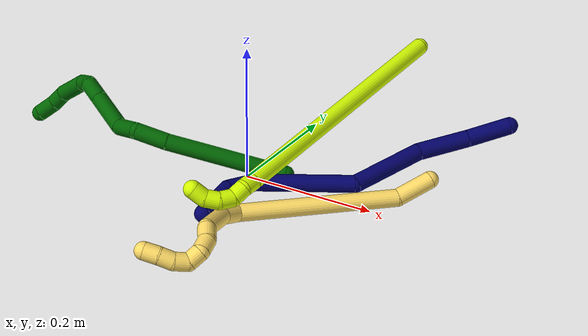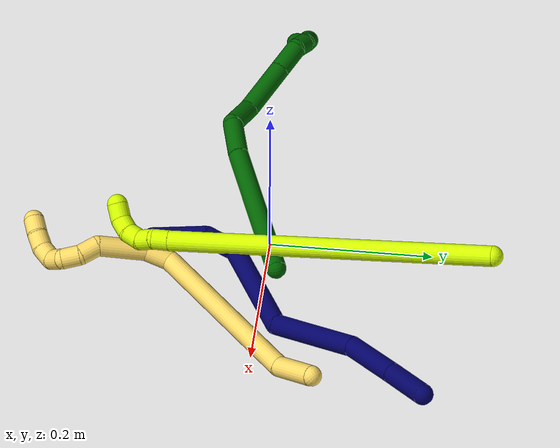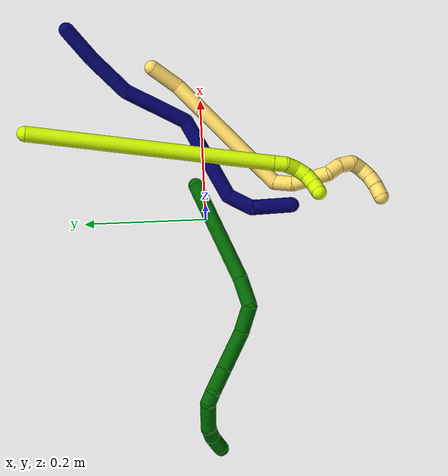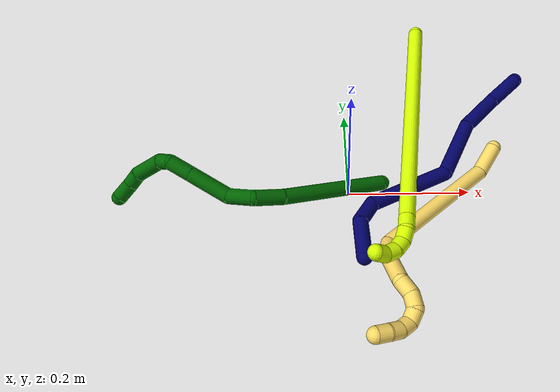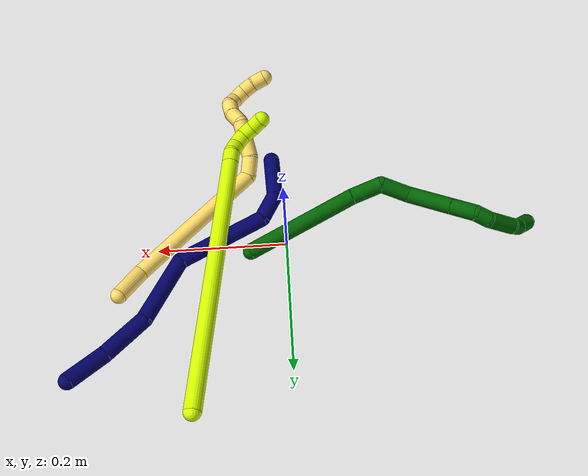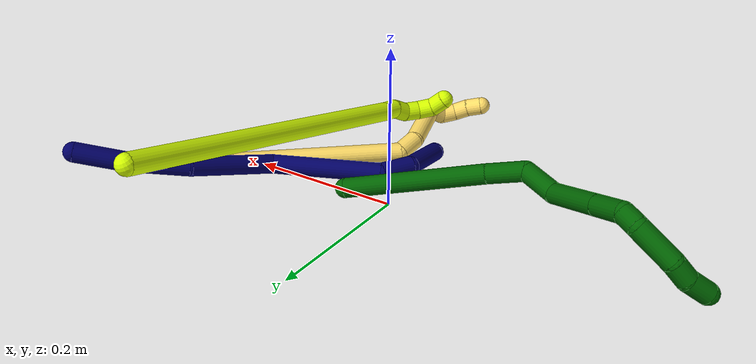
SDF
<sdf version="1.7">
 <world name="default">
  <model name="5">
   <static>0</static>
   <link name="5">
    <collision name="collision-cylinder-e_1_1_4">
     <pose>-0.007038 -0.014977 0.020921 0.621304 -0.266998 -0.086178</pose>
     <geometry><cylinder><radius>0.0125</radius><length>0.05335</length></cylinder></geometry>
     <surface>
      <friction><ode><mu>1.16</mu><mu2>1.16</mu2><slip1>0</slip1><slip2>0</slip2></ode></friction>
      <contact><ode><kp>1e+06</kp><kd>1</kd><max_vel>0</max_vel><min_depth>0.001</min_depth></ode></contact>
     </surface>
    </collision>
    <visual name="visual-cylinder-e_1_1_4">
     <pose>-0.007038 -0.014977 0.020921 0.621304 -0.266998 -0.086178</pose>
     <geometry><cylinder><radius>0.0125</radius><length>0.05335</length></cylinder></geometry>
     <material><ambient>1 0.858824 0.4 1</ambient></material>
    </visual>
    <collision name="collision-cylinder-e_2_4_5">
     <pose>-0.046644 -0.123166 0.097676 1.03111 -0.291219 -0.165822</pose>
     <geometry><cylinder><radius>0.0125</radius><length>0.226862</length></cylinder></geometry>
     <surface>
      <friction><ode><mu>1.16</mu><mu2>1.16</mu2><slip1>0</slip1><slip2>0</slip2></ode></friction>
      <contact><ode><kp>1e+06</kp><kd>1</kd><max_vel>0</max_vel><min_depth>0.001</min_depth></ode></contact>
     </surface>
    </collision>
    <visual name="visual-cylinder-e_2_4_5">
     <pose>-0.046644 -0.123166 0.097676 1.03111 -0.291219 -0.165822</pose>
     <geometry><cylinder><radius>0.0125</radius><length>0.226862</length></cylinder></geometry>
     <material><ambient>1 0.858824 0.4 1</ambient></material>
    </visual>
    <collision name="collision-cylinder-e_3_5_6">
     <pose>-0.092329 -0.222952 0.158893 0.884712 -0.995951 -0.504085</pose>
     <geometry><cylinder><radius>0.0125</radius><length>0.031257</length></cylinder></geometry>
     <surface>
      <friction><ode><mu>1.16</mu><mu2>1.16</mu2><slip1>0</slip1><slip2>0</slip2></ode></friction>
      <contact><ode><kp>1e+06</kp><kd>1</kd><max_vel>0</max_vel><min_depth>0.001</min_depth></ode></contact>
     </surface>
    </collision>
    <visual name="visual-cylinder-e_3_5_6">
     <pose>-0.092329 -0.222952 0.158893 0.884712 -0.995951 -0.504085</pose>
     <geometry><cylinder><radius>0.0125</radius><length>0.031257</length></cylinder></geometry>
     <material><ambient>1 0.858824 0.4 1</ambient></material>
    </visual>
    <collision name="collision-cylinder-e_4_6_7">
     <pose>-0.133788 -0.231386 0.174346 0.182587 -1.2241 -0.128353</pose>
     <geometry><cylinder><radius>0.0125</radius><length>0.060272</length></cylinder></geometry>
     <surface>
      <friction><ode><mu>1.16</mu><mu2>1.16</mu2><slip1>0</slip1><slip2>0</slip2></ode></friction>
      <contact><ode><kp>1e+06</kp><kd>1</kd><max_vel>0</max_vel><min_depth>0.001</min_depth></ode></contact>
     </surface>
    </collision>
    <visual name="visual-cylinder-e_4_6_7">
     <pose>-0.133788 -0.231386 0.174346 0.182587 -1.2241 -0.128353</pose>
     <geometry><cylinder><radius>0.0125</radius><length>0.060272</length></cylinder></geometry>
     <material><ambient>1 0.858824 0.4 1</ambient></material>
    </visual>
    <collision name="collision-cylinder-e_5_7_8">
     <pose>-0.170781 -0.228182 0.191094 -0.648802 -0.801196 0.282926</pose>
     <geometry><cylinder><radius>0.0125</radius><length>0.024087</length></cylinder></geometry>
     <surface>
      <friction><ode><mu>1.16</mu><mu2>1.16</mu2><slip1>0</slip1><slip2>0</slip2></ode></friction>
      <contact><ode><kp>1e+06</kp><kd>1</kd><max_vel>0</max_vel><min_depth>0.001</min_depth></ode></contact>
     </surface>
    </collision>
    <visual name="visual-cylinder-e_5_7_8">
     <pose>-0.170781 -0.228182 0.191094 -0.648802 -0.801196 0.282926</pose>
     <geometry><cylinder><radius>0.0125</radius><length>0.024087</length></cylinder></geometry>
     <material><ambient>1 0.858824 0.4 1</ambient></material>
    </visual>
    <collision name="collision-cylinder-e_6_8_9">
     <pose>-0.187369 -0.222573 0.205712 -0.068623 -0.784072 0.028381</pose>
     <geometry><cylinder><radius>0.0125</radius><length>0.022485</length></cylinder></geometry>
     <surface>
      <friction><ode><mu>1.16</mu><mu2>1.16</mu2><slip1>0</slip1><slip2>0</slip2></ode></friction>
      <contact><ode><kp>1e+06</kp><kd>1</kd><max_vel>0</max_vel><min_depth>0.001</min_depth></ode></contact>
     </surface>
    </collision>
    <visual name="visual-cylinder-e_6_8_9">
     <pose>-0.187369 -0.222573 0.205712 -0.068623 -0.784072 0.028381</pose>
     <geometry><cylinder><radius>0.0125</radius><length>0.022485</length></cylinder></geometry>
     <material><ambient>1 0.858824 0.4 1</ambient></material>
    </visual>
    <collision name="collision-cylinder-e_7_9_10">
     <pose>-0.197068 -0.225981 0.222908 0.403806 -0.17312 -0.035521</pose>
     <geometry><cylinder><radius>0.0125</radius><length>0.020433</length></cylinder></geometry>
     <surface>
      <friction><ode><mu>1.16</mu><mu2>1.16</mu2><slip1>0</slip1><slip2>0</slip2></ode></friction>
      <contact><ode><kp>1e+06</kp><kd>1</kd><max_vel>0</max_vel><min_depth>0.001</min_depth></ode></contact>
     </surface>
    </collision>
    <visual name="visual-cylinder-e_7_9_10">
     <pose>-0.197068 -0.225981 0.222908 0.403806 -0.17312 -0.035521</pose>
     <geometry><cylinder><radius>0.0125</radius><length>0.020433</length></cylinder></geometry>
     <material><ambient>1 0.858824 0.4 1</ambient></material>
    </visual>
    <collision name="collision-cylinder-e_8_10_11">
     <pose>-0.202591 -0.238691 0.235684 1.18836 -0.379448 -0.258044</pose>
     <geometry><cylinder><radius>0.0125</radius><length>0.02032</length></cylinder></geometry>
     <surface>
      <friction><ode><mu>1.16</mu><mu2>1.16</mu2><slip1>0</slip1><slip2>0</slip2></ode></friction>
      <contact><ode><kp>1e+06</kp><kd>1</kd><max_vel>0</max_vel><min_depth>0.001</min_depth></ode></contact>
     </surface>
    </collision>
    <visual name="visual-cylinder-e_8_10_11">
     <pose>-0.202591 -0.238691 0.235684 1.18836 -0.379448 -0.258044</pose>
     <geometry><cylinder><radius>0.0125</radius><length>0.02032</length></cylinder></geometry>
     <material><ambient>1 0.858824 0.4 1</ambient></material>
    </visual>
    <collision name="collision-cylinder-e_9_11_12">
     <pose>-0.208846 -0.25717 0.239721 1.51787 -0.25049 -0.237695</pose>
     <geometry><cylinder><radius>0.0125</radius><length>0.020101</length></cylinder></geometry>
     <surface>
      <friction><ode><mu>1.16</mu><mu2>1.16</mu2><slip1>0</slip1><slip2>0</slip2></ode></friction>
      <contact><ode><kp>1e+06</kp><kd>1</kd><max_vel>0</max_vel><min_depth>0.001</min_depth></ode></contact>
     </surface>
    </collision>
    <visual name="visual-cylinder-e_9_11_12">
     <pose>-0.208846 -0.25717 0.239721 1.51787 -0.25049 -0.237695</pose>
     <geometry><cylinder><radius>0.0125</radius><length>0.020101</length></cylinder></geometry>
     <material><ambient>1 0.858824 0.4 1</ambient></material>
    </visual>
    <collision name="collision-cylinder-e_10_12_2">
     <pose>-0.21231 -0.277186 0.241516 1.44713 -0.093515 -0.082624</pose>
     <geometry><cylinder><radius>0.0125</radius><length>0.020834</length></cylinder></geometry>
     <surface>
      <friction><ode><mu>1.16</mu><mu2>1.16</mu2><slip1>0</slip1><slip2>0</slip2></ode></friction>
      <contact><ode><kp>1e+06</kp><kd>1</kd><max_vel>0</max_vel><min_depth>0.001</min_depth></ode></contact>
     </surface>
    </collision>
    <visual name="visual-cylinder-e_10_12_2">
     <pose>-0.21231 -0.277186 0.241516 1.44713 -0.093515 -0.082624</pose>
     <geometry><cylinder><radius>0.0125</radius><length>0.020834</length></cylinder></geometry>
     <material><ambient>1 0.858824 0.4 1</ambient></material>
    </visual>
    <collision name="collision-sphere-2">
     <pose>-0.213282 -0.287478 0.242795 0 -0 0</pose>
     <geometry><sphere><radius>0.0125</radius></sphere></geometry>
     <surface>
      <friction><ode><mu>1.16</mu><mu2>1.16</mu2><slip1>0</slip1><slip2>0</slip2></ode></friction>
      <contact><ode><kp>1e+06</kp><kd>1</kd><max_vel>0</max_vel><min_depth>0.001</min_depth></ode></contact>
     </surface>
    </collision>
    <visual name="visual-sphere-2">
     <pose>-0.213282 -0.287478 0.242795 0 -0 0</pose>
     <geometry><sphere><radius>0.0125</radius></sphere></geometry>
     <material><ambient>1 0.858824 0.4 1</ambient></material>
    </visual>
    <collision name="collision-sphere-12">
     <pose>-0.211337 -0.266893 0.240237 0 -0 0</pose>
     <geometry><sphere><radius>0.0125</radius></sphere></geometry>
     <surface>
      <friction><ode><mu>1.16</mu><mu2>1.16</mu2><slip1>0</slip1><slip2>0</slip2></ode></friction>
      <contact><ode><kp>1e+06</kp><kd>1</kd><max_vel>0</max_vel><min_depth>0.001</min_depth></ode></contact>
     </surface>
    </collision>
    <visual name="visual-sphere-12">
     <pose>-0.211337 -0.266893 0.240237 0 -0 0</pose>
     <geometry><sphere><radius>0.0125</radius></sphere></geometry>
     <material><ambient>1 0.858824 0.4 1</ambient></material>
    </visual>
    <collision name="collision-sphere-11">
     <pose>-0.206354 -0.247447 0.239206 0 -0 0</pose>
     <geometry><sphere><radius>0.0125</radius></sphere></geometry>
     <surface>
      <friction><ode><mu>1.16</mu><mu2>1.16</mu2><slip1>0</slip1><slip2>0</slip2></ode></friction>
      <contact><ode><kp>1e+06</kp><kd>1</kd><max_vel>0</max_vel><min_depth>0.001</min_depth></ode></contact>
     </surface>
    </collision>
    <visual name="visual-sphere-11">
     <pose>-0.206354 -0.247447 0.239206 0 -0 0</pose>
     <geometry><sphere><radius>0.0125</radius></sphere></geometry>
     <material><ambient>1 0.858824 0.4 1</ambient></material>
    </visual>
    <collision name="collision-sphere-10">
     <pose>-0.198828 -0.229935 0.232162 0 -0 0</pose>
     <geometry><sphere><radius>0.0125</radius></sphere></geometry>
     <surface>
      <friction><ode><mu>1.16</mu><mu2>1.16</mu2><slip1>0</slip1><slip2>0</slip2></ode></friction>
      <contact><ode><kp>1e+06</kp><kd>1</kd><max_vel>0</max_vel><min_depth>0.001</min_depth></ode></contact>
     </surface>
    </collision>
    <visual name="visual-sphere-10">
     <pose>-0.198828 -0.229935 0.232162 0 -0 0</pose>
     <geometry><sphere><radius>0.0125</radius></sphere></geometry>
     <material><ambient>1 0.858824 0.4 1</ambient></material>
    </visual>
    <collision name="collision-sphere-9">
     <pose>-0.195308 -0.222027 0.213654 0 -0 0</pose>
     <geometry><sphere><radius>0.0125</radius></sphere></geometry>
     <surface>
      <friction><ode><mu>1.16</mu><mu2>1.16</mu2><slip1>0</slip1><slip2>0</slip2></ode></friction>
      <contact><ode><kp>1e+06</kp><kd>1</kd><max_vel>0</max_vel><min_depth>0.001</min_depth></ode></contact>
     </surface>
    </collision>
    <visual name="visual-sphere-9">
     <pose>-0.195308 -0.222027 0.213654 0 -0 0</pose>
     <geometry><sphere><radius>0.0125</radius></sphere></geometry>
     <material><ambient>1 0.858824 0.4 1</ambient></material>
    </visual>
    <collision name="collision-sphere-4">
     <pose>-0.014076 -0.029954 0.041843 0 -0 0</pose>
     <geometry><sphere><radius>0.0125</radius></sphere></geometry>
     <surface>
      <friction><ode><mu>1.16</mu><mu2>1.16</mu2><slip1>0</slip1><slip2>0</slip2></ode></friction>
      <contact><ode><kp>1e+06</kp><kd>1</kd><max_vel>0</max_vel><min_depth>0.001</min_depth></ode></contact>
     </surface>
    </collision>
    <visual name="visual-sphere-4">
     <pose>-0.014076 -0.029954 0.041843 0 -0 0</pose>
     <geometry><sphere><radius>0.0125</radius></sphere></geometry>
     <material><ambient>1 0.858824 0.4 1</ambient></material>
    </visual>
    <collision name="collision-sphere-1">
     <geometry><sphere><radius>0.0125</radius></sphere></geometry>
     <surface>
      <friction><ode><mu>1.16</mu><mu2>1.16</mu2><slip1>0</slip1><slip2>0</slip2></ode></friction>
      <contact><ode><kp>1e+06</kp><kd>1</kd><max_vel>0</max_vel><min_depth>0.001</min_depth></ode></contact>
     </surface>
    </collision>
    <visual name="visual-sphere-1">
     <geometry><sphere><radius>0.0125</radius></sphere></geometry>
     <material><ambient>1 0.858824 0.4 1</ambient></material>
    </visual>
    <collision name="collision-sphere-8">
     <pose>-0.17943 -0.223118 0.197771 0 -0 0</pose>
     <geometry><sphere><radius>0.0125</radius></sphere></geometry>
     <surface>
      <friction><ode><mu>1.16</mu><mu2>1.16</mu2><slip1>0</slip1><slip2>0</slip2></ode></friction>
      <contact><ode><kp>1e+06</kp><kd>1</kd><max_vel>0</max_vel><min_depth>0.001</min_depth></ode></contact>
     </surface>
    </collision>
    <visual name="visual-sphere-8">
     <pose>-0.17943 -0.223118 0.197771 0 -0 0</pose>
     <geometry><sphere><radius>0.0125</radius></sphere></geometry>
     <material><ambient>1 0.858824 0.4 1</ambient></material>
    </visual>
    <collision name="collision-sphere-5">
     <pose>-0.079212 -0.216378 0.15351 0 -0 0</pose>
     <geometry><sphere><radius>0.0125</radius></sphere></geometry>
     <surface>
      <friction><ode><mu>1.16</mu><mu2>1.16</mu2><slip1>0</slip1><slip2>0</slip2></ode></friction>
      <contact><ode><kp>1e+06</kp><kd>1</kd><max_vel>0</max_vel><min_depth>0.001</min_depth></ode></contact>
     </surface>
    </collision>
    <visual name="visual-sphere-5">
     <pose>-0.079212 -0.216378 0.15351 0 -0 0</pose>
     <geometry><sphere><radius>0.0125</radius></sphere></geometry>
     <material><ambient>1 0.858824 0.4 1</ambient></material>
    </visual>
    <collision name="collision-sphere-6">
     <pose>-0.105445 -0.229527 0.164276 0 -0 0</pose>
     <geometry><sphere><radius>0.0125</radius></sphere></geometry>
     <surface>
      <friction><ode><mu>1.16</mu><mu2>1.16</mu2><slip1>0</slip1><slip2>0</slip2></ode></friction>
      <contact><ode><kp>1e+06</kp><kd>1</kd><max_vel>0</max_vel><min_depth>0.001</min_depth></ode></contact>
     </surface>
    </collision>
    <visual name="visual-sphere-6">
     <pose>-0.105445 -0.229527 0.164276 0 -0 0</pose>
     <geometry><sphere><radius>0.0125</radius></sphere></geometry>
     <material><ambient>1 0.858824 0.4 1</ambient></material>
    </visual>
    <collision name="collision-sphere-7">
     <pose>-0.162131 -0.233246 0.184416 0 -0 0</pose>
     <geometry><sphere><radius>0.0125</radius></sphere></geometry>
     <surface>
      <friction><ode><mu>1.16</mu><mu2>1.16</mu2><slip1>0</slip1><slip2>0</slip2></ode></friction>
      <contact><ode><kp>1e+06</kp><kd>1</kd><max_vel>0</max_vel><min_depth>0.001</min_depth></ode></contact>
     </surface>
    </collision>
    <visual name="visual-sphere-7">
     <pose>-0.162131 -0.233246 0.184416 0 -0 0</pose>
     <geometry><sphere><radius>0.0125</radius></sphere></geometry>
     <material><ambient>1 0.858824 0.4 1</ambient></material>
    </visual>
    <inertial>
     <pose>-0.093996 -0.161137 0.134345 0 -0 0</pose>
     <mass>0.5</mass>
     <inertia>
      <ixx>0.000784</ixx>
      <ixy>0</ixy>
      <ixz>0</ixz>
      <iyy>0.000398</iyy>
      <iyz>0</iyz>
      <izz>0.001153</izz>
     </inertia>
    </inertial>
   </link>
   <pose>0.252535 0.077897 0.02895 -2.77675 0.527475 1.97216</pose>
  </model>
  <model name="6">
   <static>0</static>
   <link name="6">
    <collision name="collision-cylinder-e_1_1_4">
     <pose>-0.075166 -0.03648 0.028629 0.905389 -1.01802 -0.53009</pose>
     <geometry><cylinder><radius>0.0125</radius><length>0.17664</length></cylinder></geometry>
     <surface>
      <friction><ode><mu>1.16</mu><mu2>1.16</mu2><slip1>0</slip1><slip2>0</slip2></ode></friction>
      <contact><ode><kp>1e+06</kp><kd>1</kd><max_vel>0</max_vel><min_depth>0.001</min_depth></ode></contact>
     </surface>
    </collision>
    <visual name="visual-cylinder-e_1_1_4">
     <pose>-0.075166 -0.03648 0.028629 0.905389 -1.01802 -0.53009</pose>
     <geometry><cylinder><radius>0.0125</radius><length>0.17664</length></cylinder></geometry>
     <material><ambient>0 0.392157 0.003922 1</ambient></material>
    </visual>
    <collision name="collision-cylinder-e_2_4_5">
     <pose>-0.171767 -0.08022 0.064809 0.765849 -1.11622 -0.492744</pose>
     <geometry><cylinder><radius>0.0125</radius><length>0.047714</length></cylinder></geometry>
     <surface>
      <friction><ode><mu>1.16</mu><mu2>1.16</mu2><slip1>0</slip1><slip2>0</slip2></ode></friction>
      <contact><ode><kp>1e+06</kp><kd>1</kd><max_vel>0</max_vel><min_depth>0.001</min_depth></ode></contact>
     </surface>
    </collision>
    <visual name="visual-cylinder-e_2_4_5">
     <pose>-0.171767 -0.08022 0.064809 0.765849 -1.11622 -0.492744</pose>
     <geometry><cylinder><radius>0.0125</radius><length>0.047714</length></cylinder></geometry>
     <material><ambient>0 0.392157 0.003922 1</ambient></material>
    </visual>
    <collision name="collision-cylinder-e_3_5_6">
     <pose>-0.214625 -0.083996 0.066335 -2.61721 -1.2567 2.43397</pose>
     <geometry><cylinder><radius>0.0125</radius><length>0.045051</length></cylinder></geometry>
     <surface>
      <friction><ode><mu>1.16</mu><mu2>1.16</mu2><slip1>0</slip1><slip2>0</slip2></ode></friction>
      <contact><ode><kp>1e+06</kp><kd>1</kd><max_vel>0</max_vel><min_depth>0.001</min_depth></ode></contact>
     </surface>
    </collision>
    <visual name="visual-cylinder-e_3_5_6">
     <pose>-0.214625 -0.083996 0.066335 -2.61721 -1.2567 2.43397</pose>
     <geometry><cylinder><radius>0.0125</radius><length>0.045051</length></cylinder></geometry>
     <material><ambient>0 0.392157 0.003922 1</ambient></material>
    </visual>
    <collision name="collision-cylinder-e_4_6_7">
     <pose>-0.267617 -0.066452 0.066103 -1.18003 -1.12189 0.7964</pose>
     <geometry><cylinder><radius>0.0125</radius><length>0.070079</length></cylinder></geometry>
     <surface>
      <friction><ode><mu>1.16</mu><mu2>1.16</mu2><slip1>0</slip1><slip2>0</slip2></ode></friction>
      <contact><ode><kp>1e+06</kp><kd>1</kd><max_vel>0</max_vel><min_depth>0.001</min_depth></ode></contact>
     </surface>
    </collision>
    <visual name="visual-cylinder-e_4_6_7">
     <pose>-0.267617 -0.066452 0.066103 -1.18003 -1.12189 0.7964</pose>
     <geometry><cylinder><radius>0.0125</radius><length>0.070079</length></cylinder></geometry>
     <material><ambient>0 0.392157 0.003922 1</ambient></material>
    </visual>
    <collision name="collision-cylinder-e_5_7_8">
     <pose>-0.316564 -0.044682 0.075069 -1.18027 -1.1235 0.797871</pose>
     <geometry><cylinder><radius>0.0125</radius><length>0.038552</length></cylinder></geometry>
     <surface>
      <friction><ode><mu>1.16</mu><mu2>1.16</mu2><slip1>0</slip1><slip2>0</slip2></ode></friction>
      <contact><ode><kp>1e+06</kp><kd>1</kd><max_vel>0</max_vel><min_depth>0.001</min_depth></ode></contact>
     </surface>
    </collision>
    <visual name="visual-cylinder-e_5_7_8">
     <pose>-0.316564 -0.044682 0.075069 -1.18027 -1.1235 0.797871</pose>
     <geometry><cylinder><radius>0.0125</radius><length>0.038552</length></cylinder></geometry>
     <material><ambient>0 0.392157 0.003922 1</ambient></material>
    </visual>
    <collision name="collision-cylinder-e_6_8_9">
     <pose>-0.343628 -0.034559 0.074533 -2.56506 -1.1421 2.27675</pose>
     <geometry><cylinder><radius>0.0125</radius><length>0.021293</length></cylinder></geometry>
     <surface>
      <friction><ode><mu>1.16</mu><mu2>1.16</mu2><slip1>0</slip1><slip2>0</slip2></ode></friction>
      <contact><ode><kp>1e+06</kp><kd>1</kd><max_vel>0</max_vel><min_depth>0.001</min_depth></ode></contact>
     </surface>
    </collision>
    <visual name="visual-cylinder-e_6_8_9">
     <pose>-0.343628 -0.034559 0.074533 -2.56506 -1.1421 2.27675</pose>
     <geometry><cylinder><radius>0.0125</radius><length>0.021293</length></cylinder></geometry>
     <material><ambient>0 0.392157 0.003922 1</ambient></material>
    </visual>
    <collision name="collision-cylinder-e_7_9_10">
     <pose>-0.373091 -0.037559 0.057813 2.74738 -0.951849 -2.40234</pose>
     <geometry><cylinder><radius>0.0125</radius><length>0.04857</length></cylinder></geometry>
     <surface>
      <friction><ode><mu>1.16</mu><mu2>1.16</mu2><slip1>0</slip1><slip2>0</slip2></ode></friction>
      <contact><ode><kp>1e+06</kp><kd>1</kd><max_vel>0</max_vel><min_depth>0.001</min_depth></ode></contact>
     </surface>
    </collision>
    <visual name="visual-cylinder-e_7_9_10">
     <pose>-0.373091 -0.037559 0.057813 2.74738 -0.951849 -2.40234</pose>
     <geometry><cylinder><radius>0.0125</radius><length>0.04857</length></cylinder></geometry>
     <material><ambient>0 0.392157 0.003922 1</ambient></material>
    </visual>
    <collision name="collision-cylinder-e_8_10_11">
     <pose>-0.399853 -0.048558 0.037147 2.51118 -0.634851 -1.5783</pose>
     <geometry><cylinder><radius>0.0125</radius><length>0.023548</length></cylinder></geometry>
     <surface>
      <friction><ode><mu>1.16</mu><mu2>1.16</mu2><slip1>0</slip1><slip2>0</slip2></ode></friction>
      <contact><ode><kp>1e+06</kp><kd>1</kd><max_vel>0</max_vel><min_depth>0.001</min_depth></ode></contact>
     </surface>
    </collision>
    <visual name="visual-cylinder-e_8_10_11">
     <pose>-0.399853 -0.048558 0.037147 2.51118 -0.634851 -1.5783</pose>
     <geometry><cylinder><radius>0.0125</radius><length>0.023548</length></cylinder></geometry>
     <material><ambient>0 0.392157 0.003922 1</ambient></material>
    </visual>
    <collision name="collision-cylinder-e_9_11_2">
     <pose>-0.415435 -0.063792 0.023421 2.1323 -0.646435 -1.09027</pose>
     <geometry><cylinder><radius>0.0125</radius><length>0.028552</length></cylinder></geometry>
     <surface>
      <friction><ode><mu>1.16</mu><mu2>1.16</mu2><slip1>0</slip1><slip2>0</slip2></ode></friction>
      <contact><ode><kp>1e+06</kp><kd>1</kd><max_vel>0</max_vel><min_depth>0.001</min_depth></ode></contact>
     </surface>
    </collision>
    <visual name="visual-cylinder-e_9_11_2">
     <pose>-0.415435 -0.063792 0.023421 2.1323 -0.646435 -1.09027</pose>
     <geometry><cylinder><radius>0.0125</radius><length>0.028552</length></cylinder></geometry>
     <material><ambient>0 0.392157 0.003922 1</ambient></material>
    </visual>
    <collision name="collision-sphere-2">
     <pose>-0.424034 -0.073439 0.017354 0 -0 0</pose>
     <geometry><sphere><radius>0.0125</radius></sphere></geometry>
     <surface>
      <friction><ode><mu>1.16</mu><mu2>1.16</mu2><slip1>0</slip1><slip2>0</slip2></ode></friction>
      <contact><ode><kp>1e+06</kp><kd>1</kd><max_vel>0</max_vel><min_depth>0.001</min_depth></ode></contact>
     </surface>
    </collision>
    <visual name="visual-sphere-2">
     <pose>-0.424034 -0.073439 0.017354 0 -0 0</pose>
     <geometry><sphere><radius>0.0125</radius></sphere></geometry>
     <material><ambient>0 0.392157 0.003922 1</ambient></material>
    </visual>
    <collision name="collision-sphere-11">
     <pose>-0.406836 -0.054146 0.029489 0 -0 0</pose>
     <geometry><sphere><radius>0.0125</radius></sphere></geometry>
     <surface>
      <friction><ode><mu>1.16</mu><mu2>1.16</mu2><slip1>0</slip1><slip2>0</slip2></ode></friction>
      <contact><ode><kp>1e+06</kp><kd>1</kd><max_vel>0</max_vel><min_depth>0.001</min_depth></ode></contact>
     </surface>
    </collision>
    <visual name="visual-sphere-11">
     <pose>-0.406836 -0.054146 0.029489 0 -0 0</pose>
     <geometry><sphere><radius>0.0125</radius></sphere></geometry>
     <material><ambient>0 0.392157 0.003922 1</ambient></material>
    </visual>
    <collision name="collision-sphere-10">
     <pose>-0.392871 -0.04297 0.044804 0 -0 0</pose>
     <geometry><sphere><radius>0.0125</radius></sphere></geometry>
     <surface>
      <friction><ode><mu>1.16</mu><mu2>1.16</mu2><slip1>0</slip1><slip2>0</slip2></ode></friction>
      <contact><ode><kp>1e+06</kp><kd>1</kd><max_vel>0</max_vel><min_depth>0.001</min_depth></ode></contact>
     </surface>
    </collision>
    <visual name="visual-sphere-10">
     <pose>-0.392871 -0.04297 0.044804 0 -0 0</pose>
     <geometry><sphere><radius>0.0125</radius></sphere></geometry>
     <material><ambient>0 0.392157 0.003922 1</ambient></material>
    </visual>
    <collision name="collision-sphere-9">
     <pose>-0.353311 -0.032147 0.070822 0 -0 0</pose>
     <geometry><sphere><radius>0.0125</radius></sphere></geometry>
     <surface>
      <friction><ode><mu>1.16</mu><mu2>1.16</mu2><slip1>0</slip1><slip2>0</slip2></ode></friction>
      <contact><ode><kp>1e+06</kp><kd>1</kd><max_vel>0</max_vel><min_depth>0.001</min_depth></ode></contact>
     </surface>
    </collision>
    <visual name="visual-sphere-9">
     <pose>-0.353311 -0.032147 0.070822 0 -0 0</pose>
     <geometry><sphere><radius>0.0125</radius></sphere></geometry>
     <material><ambient>0 0.392157 0.003922 1</ambient></material>
    </visual>
    <collision name="collision-sphere-4">
     <pose>-0.150333 -0.072959 0.057259 0 -0 0</pose>
     <geometry><sphere><radius>0.0125</radius></sphere></geometry>
     <surface>
      <friction><ode><mu>1.16</mu><mu2>1.16</mu2><slip1>0</slip1><slip2>0</slip2></ode></friction>
      <contact><ode><kp>1e+06</kp><kd>1</kd><max_vel>0</max_vel><min_depth>0.001</min_depth></ode></contact>
     </surface>
    </collision>
    <visual name="visual-sphere-4">
     <pose>-0.150333 -0.072959 0.057259 0 -0 0</pose>
     <geometry><sphere><radius>0.0125</radius></sphere></geometry>
     <material><ambient>0 0.392157 0.003922 1</ambient></material>
    </visual>
    <collision name="collision-sphere-1">
     <geometry><sphere><radius>0.0125</radius></sphere></geometry>
     <surface>
      <friction><ode><mu>1.16</mu><mu2>1.16</mu2><slip1>0</slip1><slip2>0</slip2></ode></friction>
      <contact><ode><kp>1e+06</kp><kd>1</kd><max_vel>0</max_vel><min_depth>0.001</min_depth></ode></contact>
     </surface>
    </collision>
    <visual name="visual-sphere-1">
     <geometry><sphere><radius>0.0125</radius></sphere></geometry>
     <material><ambient>0 0.392157 0.003922 1</ambient></material>
    </visual>
    <collision name="collision-sphere-8">
     <pose>-0.333944 -0.036972 0.078243 0 -0 0</pose>
     <geometry><sphere><radius>0.0125</radius></sphere></geometry>
     <surface>
      <friction><ode><mu>1.16</mu><mu2>1.16</mu2><slip1>0</slip1><slip2>0</slip2></ode></friction>
      <contact><ode><kp>1e+06</kp><kd>1</kd><max_vel>0</max_vel><min_depth>0.001</min_depth></ode></contact>
     </surface>
    </collision>
    <visual name="visual-sphere-8">
     <pose>-0.333944 -0.036972 0.078243 0 -0 0</pose>
     <geometry><sphere><radius>0.0125</radius></sphere></geometry>
     <material><ambient>0 0.392157 0.003922 1</ambient></material>
    </visual>
    <collision name="collision-sphere-5">
     <pose>-0.193201 -0.087481 0.072359 0 -0 0</pose>
     <geometry><sphere><radius>0.0125</radius></sphere></geometry>
     <surface>
      <friction><ode><mu>1.16</mu><mu2>1.16</mu2><slip1>0</slip1><slip2>0</slip2></ode></friction>
      <contact><ode><kp>1e+06</kp><kd>1</kd><max_vel>0</max_vel><min_depth>0.001</min_depth></ode></contact>
     </surface>
    </collision>
    <visual name="visual-sphere-5">
     <pose>-0.193201 -0.087481 0.072359 0 -0 0</pose>
     <geometry><sphere><radius>0.0125</radius></sphere></geometry>
     <material><ambient>0 0.392157 0.003922 1</ambient></material>
    </visual>
    <collision name="collision-sphere-6">
     <pose>-0.236048 -0.080512 0.060311 0 -0 0</pose>
     <geometry><sphere><radius>0.0125</radius></sphere></geometry>
     <surface>
      <friction><ode><mu>1.16</mu><mu2>1.16</mu2><slip1>0</slip1><slip2>0</slip2></ode></friction>
      <contact><ode><kp>1e+06</kp><kd>1</kd><max_vel>0</max_vel><min_depth>0.001</min_depth></ode></contact>
     </surface>
    </collision>
    <visual name="visual-sphere-6">
     <pose>-0.236048 -0.080512 0.060311 0 -0 0</pose>
     <geometry><sphere><radius>0.0125</radius></sphere></geometry>
     <material><ambient>0 0.392157 0.003922 1</ambient></material>
    </visual>
    <collision name="collision-sphere-7">
     <pose>-0.299185 -0.052391 0.071895 0 -0 0</pose>
     <geometry><sphere><radius>0.0125</radius></sphere></geometry>
     <surface>
      <friction><ode><mu>1.16</mu><mu2>1.16</mu2><slip1>0</slip1><slip2>0</slip2></ode></friction>
      <contact><ode><kp>1e+06</kp><kd>1</kd><max_vel>0</max_vel><min_depth>0.001</min_depth></ode></contact>
     </surface>
    </collision>
    <visual name="visual-sphere-7">
     <pose>-0.299185 -0.052391 0.071895 0 -0 0</pose>
     <geometry><sphere><radius>0.0125</radius></sphere></geometry>
     <material><ambient>0 0.392157 0.003922 1</ambient></material>
    </visual>
    <inertial>
     <pose>-0.217632 -0.05192 0.049206 0 -0 0</pose>
     <mass>0.5</mass>
     <inertia>
      <ixx>6.7e-05</ixx>
      <ixy>0</ixy>
      <ixz>0</ixz>
      <iyy>0.000345</iyy>
      <iyz>0</iyz>
      <izz>0.000649</izz>
     </inertia>
    </inertial>
   </link>
   <pose>0.055679 0.013892 0.012484 0.241505 -0.000647 -0.123223</pose>
  </model>
  <model name="7">
   <static>0</static>
   <link name="7">
    <collision name="collision-cylinder-e_1_1_4">
     <pose>-0.021202 -0.012376 -0.019577 2.57784 -0.741252 -1.86071</pose>
     <geometry><cylinder><radius>0.0125</radius><length>0.0628</length></cylinder></geometry>
     <surface>
      <friction><ode><mu>1.16</mu><mu2>1.16</mu2><slip1>0</slip1><slip2>0</slip2></ode></friction>
      <contact><ode><kp>1e+06</kp><kd>1</kd><max_vel>0</max_vel><min_depth>0.001</min_depth></ode></contact>
     </surface>
    </collision>
    <visual name="visual-cylinder-e_1_1_4">
     <pose>-0.021202 -0.012376 -0.019577 2.57784 -0.741252 -1.86071</pose>
     <geometry><cylinder><radius>0.0125</radius><length>0.0628</length></cylinder></geometry>
     <material><ambient>0.003922 0 0.403922 1</ambient></material>
    </visual>
    <collision name="collision-cylinder-e_2_4_5">
     <pose>-0.067479 -0.04316 -0.060198 2.42291 -0.731112 -1.58954</pose>
     <geometry><cylinder><radius>0.0125</radius><length>0.075112</length></cylinder></geometry>
     <surface>
      <friction><ode><mu>1.16</mu><mu2>1.16</mu2><slip1>0</slip1><slip2>0</slip2></ode></friction>
      <contact><ode><kp>1e+06</kp><kd>1</kd><max_vel>0</max_vel><min_depth>0.001</min_depth></ode></contact>
     </surface>
    </collision>
    <visual name="visual-cylinder-e_2_4_5">
     <pose>-0.067479 -0.04316 -0.060198 2.42291 -0.731112 -1.58954</pose>
     <geometry><cylinder><radius>0.0125</radius><length>0.075112</length></cylinder></geometry>
     <material><ambient>0.003922 0 0.403922 1</ambient></material>
    </visual>
    <collision name="collision-cylinder-e_3_5_6">
     <pose>-0.116372 -0.099758 -0.112914 2.26317 -0.447545 -0.902192</pose>
     <geometry><cylinder><radius>0.0125</radius><length>0.110071</length></cylinder></geometry>
     <surface>
      <friction><ode><mu>1.16</mu><mu2>1.16</mu2><slip1>0</slip1><slip2>0</slip2></ode></friction>
      <contact><ode><kp>1e+06</kp><kd>1</kd><max_vel>0</max_vel><min_depth>0.001</min_depth></ode></contact>
     </surface>
    </collision>
    <visual name="visual-cylinder-e_3_5_6">
     <pose>-0.116372 -0.099758 -0.112914 2.26317 -0.447545 -0.902192</pose>
     <geometry><cylinder><radius>0.0125</radius><length>0.110071</length></cylinder></geometry>
     <material><ambient>0.003922 0 0.403922 1</ambient></material>
    </visual>
    <collision name="collision-cylinder-e_4_6_7">
     <pose>-0.202198 -0.157267 -0.173162 2.54713 -1.06316 -2.18115</pose>
     <geometry><cylinder><radius>0.0125</radius><length>0.141915</length></cylinder></geometry>
     <surface>
      <friction><ode><mu>1.16</mu><mu2>1.16</mu2><slip1>0</slip1><slip2>0</slip2></ode></friction>
      <contact><ode><kp>1e+06</kp><kd>1</kd><max_vel>0</max_vel><min_depth>0.001</min_depth></ode></contact>
     </surface>
    </collision>
    <visual name="visual-cylinder-e_4_6_7">
     <pose>-0.202198 -0.157267 -0.173162 2.54713 -1.06316 -2.18115</pose>
     <geometry><cylinder><radius>0.0125</radius><length>0.141915</length></cylinder></geometry>
     <material><ambient>0.003922 0 0.403922 1</ambient></material>
    </visual>
    <collision name="collision-cylinder-e_5_7_8">
     <pose>-0.276034 -0.192746 -0.20996 2.04143 -0.577956 -0.90286</pose>
     <geometry><cylinder><radius>0.0125</radius><length>0.043295</length></cylinder></geometry>
     <surface>
      <friction><ode><mu>1.16</mu><mu2>1.16</mu2><slip1>0</slip1><slip2>0</slip2></ode></friction>
      <contact><ode><kp>1e+06</kp><kd>1</kd><max_vel>0</max_vel><min_depth>0.001</min_depth></ode></contact>
     </surface>
    </collision>
    <visual name="visual-cylinder-e_5_7_8">
     <pose>-0.276034 -0.192746 -0.20996 2.04143 -0.577956 -0.90286</pose>
     <geometry><cylinder><radius>0.0125</radius><length>0.043295</length></cylinder></geometry>
     <material><ambient>0.003922 0 0.403922 1</ambient></material>
    </visual>
    <collision name="collision-cylinder-e_6_8_2">
     <pose>-0.288032 -0.239449 -0.231706 1.98765 -0.005132 -0.007886</pose>
     <geometry><cylinder><radius>0.0125</radius><length>0.066807</length></cylinder></geometry>
     <surface>
      <friction><ode><mu>1.16</mu><mu2>1.16</mu2><slip1>0</slip1><slip2>0</slip2></ode></friction>
      <contact><ode><kp>1e+06</kp><kd>1</kd><max_vel>0</max_vel><min_depth>0.001</min_depth></ode></contact>
     </surface>
    </collision>
    <visual name="visual-cylinder-e_6_8_2">
     <pose>-0.288032 -0.239449 -0.231706 1.98765 -0.005132 -0.007886</pose>
     <geometry><cylinder><radius>0.0125</radius><length>0.066807</length></cylinder></geometry>
     <material><ambient>0.003922 0 0.403922 1</ambient></material>
    </visual>
    <collision name="collision-sphere-2">
     <pose>-0.288203 -0.269992 -0.24523 0 -0 0</pose>
     <geometry><sphere><radius>0.0125</radius></sphere></geometry>
     <surface>
      <friction><ode><mu>1.16</mu><mu2>1.16</mu2><slip1>0</slip1><slip2>0</slip2></ode></friction>
      <contact><ode><kp>1e+06</kp><kd>1</kd><max_vel>0</max_vel><min_depth>0.001</min_depth></ode></contact>
     </surface>
    </collision>
    <visual name="visual-sphere-2">
     <pose>-0.288203 -0.269992 -0.24523 0 -0 0</pose>
     <geometry><sphere><radius>0.0125</radius></sphere></geometry>
     <material><ambient>0.003922 0 0.403922 1</ambient></material>
    </visual>
    <collision name="collision-sphere-4">
     <pose>-0.042403 -0.024753 -0.039154 0 -0 0</pose>
     <geometry><sphere><radius>0.0125</radius></sphere></geometry>
     <surface>
      <friction><ode><mu>1.16</mu><mu2>1.16</mu2><slip1>0</slip1><slip2>0</slip2></ode></friction>
      <contact><ode><kp>1e+06</kp><kd>1</kd><max_vel>0</max_vel><min_depth>0.001</min_depth></ode></contact>
     </surface>
    </collision>
    <visual name="visual-sphere-4">
     <pose>-0.042403 -0.024753 -0.039154 0 -0 0</pose>
     <geometry><sphere><radius>0.0125</radius></sphere></geometry>
     <material><ambient>0.003922 0 0.403922 1</ambient></material>
    </visual>
    <collision name="collision-sphere-1">
     <geometry><sphere><radius>0.0125</radius></sphere></geometry>
     <surface>
      <friction><ode><mu>1.16</mu><mu2>1.16</mu2><slip1>0</slip1><slip2>0</slip2></ode></friction>
      <contact><ode><kp>1e+06</kp><kd>1</kd><max_vel>0</max_vel><min_depth>0.001</min_depth></ode></contact>
     </surface>
    </collision>
    <visual name="visual-sphere-1">
     <geometry><sphere><radius>0.0125</radius></sphere></geometry>
     <material><ambient>0.003922 0 0.403922 1</ambient></material>
    </visual>
    <collision name="collision-sphere-8">
     <pose>-0.287861 -0.208906 -0.218181 0 -0 0</pose>
     <geometry><sphere><radius>0.0125</radius></sphere></geometry>
     <surface>
      <friction><ode><mu>1.16</mu><mu2>1.16</mu2><slip1>0</slip1><slip2>0</slip2></ode></friction>
      <contact><ode><kp>1e+06</kp><kd>1</kd><max_vel>0</max_vel><min_depth>0.001</min_depth></ode></contact>
     </surface>
    </collision>
    <visual name="visual-sphere-8">
     <pose>-0.287861 -0.208906 -0.218181 0 -0 0</pose>
     <geometry><sphere><radius>0.0125</radius></sphere></geometry>
     <material><ambient>0.003922 0 0.403922 1</ambient></material>
    </visual>
    <collision name="collision-sphere-5">
     <pose>-0.092555 -0.061567 -0.081241 0 -0 0</pose>
     <geometry><sphere><radius>0.0125</radius></sphere></geometry>
     <surface>
      <friction><ode><mu>1.16</mu><mu2>1.16</mu2><slip1>0</slip1><slip2>0</slip2></ode></friction>
      <contact><ode><kp>1e+06</kp><kd>1</kd><max_vel>0</max_vel><min_depth>0.001</min_depth></ode></contact>
     </surface>
    </collision>
    <visual name="visual-sphere-5">
     <pose>-0.092555 -0.061567 -0.081241 0 -0 0</pose>
     <geometry><sphere><radius>0.0125</radius></sphere></geometry>
     <material><ambient>0.003922 0 0.403922 1</ambient></material>
    </visual>
    <collision name="collision-sphere-6">
     <pose>-0.140189 -0.137949 -0.144586 0 -0 0</pose>
     <geometry><sphere><radius>0.0125</radius></sphere></geometry>
     <surface>
      <friction><ode><mu>1.16</mu><mu2>1.16</mu2><slip1>0</slip1><slip2>0</slip2></ode></friction>
      <contact><ode><kp>1e+06</kp><kd>1</kd><max_vel>0</max_vel><min_depth>0.001</min_depth></ode></contact>
     </surface>
    </collision>
    <visual name="visual-sphere-6">
     <pose>-0.140189 -0.137949 -0.144586 0 -0 0</pose>
     <geometry><sphere><radius>0.0125</radius></sphere></geometry>
     <material><ambient>0.003922 0 0.403922 1</ambient></material>
    </visual>
    <collision name="collision-sphere-7">
     <pose>-0.264208 -0.176585 -0.201738 0 -0 0</pose>
     <geometry><sphere><radius>0.0125</radius></sphere></geometry>
     <surface>
      <friction><ode><mu>1.16</mu><mu2>1.16</mu2><slip1>0</slip1><slip2>0</slip2></ode></friction>
      <contact><ode><kp>1e+06</kp><kd>1</kd><max_vel>0</max_vel><min_depth>0.001</min_depth></ode></contact>
     </surface>
    </collision>
    <visual name="visual-sphere-7">
     <pose>-0.264208 -0.176585 -0.201738 0 -0 0</pose>
     <geometry><sphere><radius>0.0125</radius></sphere></geometry>
     <material><ambient>0.003922 0 0.403922 1</ambient></material>
    </visual>
    <inertial>
     <pose>-0.158195 -0.12332 -0.134647 0 -0 0</pose>
     <mass>0.5</mass>
     <inertia>
      <ixx>-0.000229</ixx>
      <ixy>0</ixy>
      <ixz>0</ixz>
      <iyy>-3.2e-05</iyy>
      <iyz>0</iyz>
      <izz>0.000495</izz>
     </inertia>
    </inertial>
   </link>
   <pose>0.311121 0.212957 0.071694 -0.298869 0.308017 0.081011</pose>
  </model>
  <model name="15">
   <static>0</static>
   <link name="15">
    <collision name="collision-cylinder-e_1_1_4">
     <pose>-0.037766 -0.171788 -0.094933 2.07565 -0.190092 -0.320439</pose>
     <geometry><cylinder><radius>0.0125</radius><length>0.399748</length></cylinder></geometry>
     <surface>
      <friction><ode><mu>1.16</mu><mu2>1.16</mu2><slip1>0</slip1><slip2>0</slip2></ode></friction>
      <contact><ode><kp>1e+06</kp><kd>1</kd><max_vel>0</max_vel><min_depth>0.001</min_depth></ode></contact>
     </surface>
    </collision>
    <visual name="visual-cylinder-e_1_1_4">
     <pose>-0.037766 -0.171788 -0.094933 2.07565 -0.190092 -0.320439</pose>
     <geometry><cylinder><radius>0.0125</radius><length>0.399748</length></cylinder></geometry>
     <material><ambient>0.835294 1 0 1</ambient></material>
    </visual>
    <collision name="collision-cylinder-e_2_4_5">
     <pose>-0.077607 -0.35249 -0.194173 2.02077 -0.206584 -0.327424</pose>
     <geometry><cylinder><radius>0.0125</radius><length>0.020231</length></cylinder></geometry>
     <surface>
      <friction><ode><mu>1.16</mu><mu2>1.16</mu2><slip1>0</slip1><slip2>0</slip2></ode></friction>
      <contact><ode><kp>1e+06</kp><kd>1</kd><max_vel>0</max_vel><min_depth>0.001</min_depth></ode></contact>
     </surface>
    </collision>
    <visual name="visual-cylinder-e_2_4_5">
     <pose>-0.077607 -0.35249 -0.194173 2.02077 -0.206584 -0.327424</pose>
     <geometry><cylinder><radius>0.0125</radius><length>0.020231</length></cylinder></geometry>
     <material><ambient>0.835294 1 0 1</ambient></material>
    </visual>
    <collision name="collision-cylinder-e_3_5_6">
     <pose>-0.082611 -0.367571 -0.205788 2.44086 -0.297286 -0.777801</pose>
     <geometry><cylinder><radius>0.0125</radius><length>0.020002</length></cylinder></geometry>
     <surface>
      <friction><ode><mu>1.16</mu><mu2>1.16</mu2><slip1>0</slip1><slip2>0</slip2></ode></friction>
      <contact><ode><kp>1e+06</kp><kd>1</kd><max_vel>0</max_vel><min_depth>0.001</min_depth></ode></contact>
     </surface>
    </collision>
    <visual name="visual-cylinder-e_3_5_6">
     <pose>-0.082611 -0.367571 -0.205788 2.44086 -0.297286 -0.777801</pose>
     <geometry><cylinder><radius>0.0125</radius><length>0.020002</length></cylinder></geometry>
     <material><ambient>0.835294 1 0 1</ambient></material>
    </visual>
    <collision name="collision-cylinder-e_4_6_7">
     <pose>-0.091997 -0.380525 -0.216603 2.04754 -0.701549 -1.08203</pose>
     <geometry><cylinder><radius>0.0125</radius><length>0.020005</length></cylinder></geometry>
     <surface>
      <friction><ode><mu>1.16</mu><mu2>1.16</mu2><slip1>0</slip1><slip2>0</slip2></ode></friction>
      <contact><ode><kp>1e+06</kp><kd>1</kd><max_vel>0</max_vel><min_depth>0.001</min_depth></ode></contact>
     </surface>
    </collision>
    <visual name="visual-cylinder-e_4_6_7">
     <pose>-0.091997 -0.380525 -0.216603 2.04754 -0.701549 -1.08203</pose>
     <geometry><cylinder><radius>0.0125</radius><length>0.020005</length></cylinder></geometry>
     <material><ambient>0.835294 1 0 1</ambient></material>
    </visual>
    <collision name="collision-cylinder-e_5_7_8">
     <pose>-0.107246 -0.391967 -0.221152 1.79126 -1.07383 -1.27854</pose>
     <geometry><cylinder><radius>0.0125</radius><length>0.020008</length></cylinder></geometry>
     <surface>
      <friction><ode><mu>1.16</mu><mu2>1.16</mu2><slip1>0</slip1><slip2>0</slip2></ode></friction>
      <contact><ode><kp>1e+06</kp><kd>1</kd><max_vel>0</max_vel><min_depth>0.001</min_depth></ode></contact>
     </surface>
    </collision>
    <visual name="visual-cylinder-e_5_7_8">
     <pose>-0.107246 -0.391967 -0.221152 1.79126 -1.07383 -1.27854</pose>
     <geometry><cylinder><radius>0.0125</radius><length>0.020008</length></cylinder></geometry>
     <material><ambient>0.835294 1 0 1</ambient></material>
    </visual>
    <collision name="collision-cylinder-e_6_8_2">
     <pose>-0.124641 -0.400252 -0.218604 0.790935 -1.03497 -0.466608</pose>
     <geometry><cylinder><radius>0.0125</radius><length>0.020006</length></cylinder></geometry>
     <surface>
      <friction><ode><mu>1.16</mu><mu2>1.16</mu2><slip1>0</slip1><slip2>0</slip2></ode></friction>
      <contact><ode><kp>1e+06</kp><kd>1</kd><max_vel>0</max_vel><min_depth>0.001</min_depth></ode></contact>
     </surface>
    </collision>
    <visual name="visual-cylinder-e_6_8_2">
     <pose>-0.124641 -0.400252 -0.218604 0.790935 -1.03497 -0.466608</pose>
     <geometry><cylinder><radius>0.0125</radius><length>0.020006</length></cylinder></geometry>
     <material><ambient>0.835294 1 0 1</ambient></material>
    </visual>
    <collision name="collision-sphere-2">
     <pose>-0.133242 -0.403884 -0.215013 0 -0 0</pose>
     <geometry><sphere><radius>0.0125</radius></sphere></geometry>
     <surface>
      <friction><ode><mu>1.16</mu><mu2>1.16</mu2><slip1>0</slip1><slip2>0</slip2></ode></friction>
      <contact><ode><kp>1e+06</kp><kd>1</kd><max_vel>0</max_vel><min_depth>0.001</min_depth></ode></contact>
     </surface>
    </collision>
    <visual name="visual-sphere-2">
     <pose>-0.133242 -0.403884 -0.215013 0 -0 0</pose>
     <geometry><sphere><radius>0.0125</radius></sphere></geometry>
     <material><ambient>0.835294 1 0 1</ambient></material>
    </visual>
    <collision name="collision-sphere-4">
     <pose>-0.075532 -0.343576 -0.189867 0 -0 0</pose>
     <geometry><sphere><radius>0.0125</radius></sphere></geometry>
     <surface>
      <friction><ode><mu>1.16</mu><mu2>1.16</mu2><slip1>0</slip1><slip2>0</slip2></ode></friction>
      <contact><ode><kp>1e+06</kp><kd>1</kd><max_vel>0</max_vel><min_depth>0.001</min_depth></ode></contact>
     </surface>
    </collision>
    <visual name="visual-sphere-4">
     <pose>-0.075532 -0.343576 -0.189867 0 -0 0</pose>
     <geometry><sphere><radius>0.0125</radius></sphere></geometry>
     <material><ambient>0.835294 1 0 1</ambient></material>
    </visual>
    <collision name="collision-sphere-1">
     <geometry><sphere><radius>0.0125</radius></sphere></geometry>
     <surface>
      <friction><ode><mu>1.16</mu><mu2>1.16</mu2><slip1>0</slip1><slip2>0</slip2></ode></friction>
      <contact><ode><kp>1e+06</kp><kd>1</kd><max_vel>0</max_vel><min_depth>0.001</min_depth></ode></contact>
     </surface>
    </collision>
    <visual name="visual-sphere-1">
     <geometry><sphere><radius>0.0125</radius></sphere></geometry>
     <material><ambient>0.835294 1 0 1</ambient></material>
    </visual>
    <collision name="collision-sphere-8">
     <pose>-0.11604 -0.396621 -0.222195 0 -0 0</pose>
     <geometry><sphere><radius>0.0125</radius></sphere></geometry>
     <surface>
      <friction><ode><mu>1.16</mu><mu2>1.16</mu2><slip1>0</slip1><slip2>0</slip2></ode></friction>
      <contact><ode><kp>1e+06</kp><kd>1</kd><max_vel>0</max_vel><min_depth>0.001</min_depth></ode></contact>
     </surface>
    </collision>
    <visual name="visual-sphere-8">
     <pose>-0.11604 -0.396621 -0.222195 0 -0 0</pose>
     <geometry><sphere><radius>0.0125</radius></sphere></geometry>
     <material><ambient>0.835294 1 0 1</ambient></material>
    </visual>
    <collision name="collision-sphere-5">
     <pose>-0.079682 -0.361405 -0.198479 0 -0 0</pose>
     <geometry><sphere><radius>0.0125</radius></sphere></geometry>
     <surface>
      <friction><ode><mu>1.16</mu><mu2>1.16</mu2><slip1>0</slip1><slip2>0</slip2></ode></friction>
      <contact><ode><kp>1e+06</kp><kd>1</kd><max_vel>0</max_vel><min_depth>0.001</min_depth></ode></contact>
     </surface>
    </collision>
    <visual name="visual-sphere-5">
     <pose>-0.079682 -0.361405 -0.198479 0 -0 0</pose>
     <geometry><sphere><radius>0.0125</radius></sphere></geometry>
     <material><ambient>0.835294 1 0 1</ambient></material>
    </visual>
    <collision name="collision-sphere-6">
     <pose>-0.085541 -0.373737 -0.213097 0 -0 0</pose>
     <geometry><sphere><radius>0.0125</radius></sphere></geometry>
     <surface>
      <friction><ode><mu>1.16</mu><mu2>1.16</mu2><slip1>0</slip1><slip2>0</slip2></ode></friction>
      <contact><ode><kp>1e+06</kp><kd>1</kd><max_vel>0</max_vel><min_depth>0.001</min_depth></ode></contact>
     </surface>
    </collision>
    <visual name="visual-sphere-6">
     <pose>-0.085541 -0.373737 -0.213097 0 -0 0</pose>
     <geometry><sphere><radius>0.0125</radius></sphere></geometry>
     <material><ambient>0.835294 1 0 1</ambient></material>
    </visual>
    <collision name="collision-sphere-7">
     <pose>-0.098452 -0.387313 -0.220109 0 -0 0</pose>
     <geometry><sphere><radius>0.0125</radius></sphere></geometry>
     <surface>
      <friction><ode><mu>1.16</mu><mu2>1.16</mu2><slip1>0</slip1><slip2>0</slip2></ode></friction>
      <contact><ode><kp>1e+06</kp><kd>1</kd><max_vel>0</max_vel><min_depth>0.001</min_depth></ode></contact>
     </surface>
    </collision>
    <visual name="visual-sphere-7">
     <pose>-0.098452 -0.387313 -0.220109 0 -0 0</pose>
     <geometry><sphere><radius>0.0125</radius></sphere></geometry>
     <material><ambient>0.835294 1 0 1</ambient></material>
    </visual>
    <inertial>
     <pose>-0.049598 -0.213235 -0.11825 0 -0 0</pose>
     <mass>0.5</mass>
     <inertia>
      <ixx>0.003314</ixx>
      <ixy>0</ixy>
      <ixz>0</ixz>
      <iyy>-0.003857</iyy>
      <iyz>0</iyz>
      <izz>0.005589</izz>
     </inertia>
    </inertial>
   </link>
   <pose>0.132609 0.278175 0.131527 -0.292262 0.210824 0.098826</pose>
  </model>
 </world>
</sdf>
